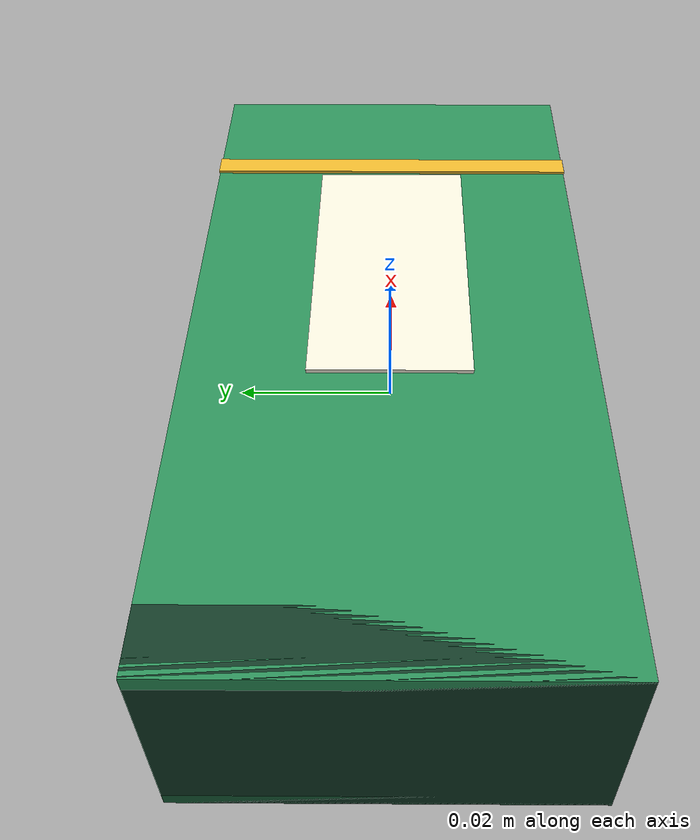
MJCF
<mujoco model="vla82_vla82_048">
  <compiler angle="radian"/>
  <asset>
    <texture name="source_texture" type="2d" file="source_texture.png"/>
    <material name="source_material" texture="source_texture" rgba="1 1 1 1"/>
  </asset>
  <default>
    <default class="visual"><geom contype="0" conaffinity="0" group="1"/></default>
    <default class="collision"><geom contype="1" conaffinity="1" group="0" density="300" friction="0.65 0.006 0.0002" solref="0.02 1" solimp="0.9 0.95 0.001"/></default>
    <default class="region"><geom contype="0" conaffinity="0" group="1" rgba="0 1 0 0" mass="0"/></default>
  </default>
  <worldbody><body><body name="object">
    <geom name="notebook_pages" class="visual" type="box" pos="0.003 0 0" size="0.044000 0.022000 0.012000" rgba="0.94 0.90 0.80 1"/>
    <geom name="notebook_cover_top" class="visual" type="box" pos="0 0 0.013000" size="0.050000 0.025000 0.001" rgba="0.18 0.58 0.36 1"/>
    <geom name="notebook_cover_bottom" class="visual" type="box" pos="0 0 -0.013000" size="0.050000 0.025000 0.001" rgba="0.10 0.38 0.23 1"/>
    <geom name="notebook_spine" class="visual" type="box" pos="-0.046000 0 0" size="0.004 0.025000 0.014000" rgba="0.08 0.24 0.16 1"/>
    <geom name="notebook_label" class="visual" type="box" pos="0.010 0 0.014250" size="0.020 0.010 0.00025" rgba="0.97 0.96 0.88 1"/>
    <geom name="notebook_elastic" class="visual" type="box" pos="0.032 0 0.014550" size="0.0015 0.025000 0.00020" rgba="0.94 0.73 0.18 1"/>
    <geom name="collision" class="collision" type="box" size="0.050000 0.025000 0.014000"/>
    <geom name="reg_bbox" class="region" type="box" pos="0 0 0" size="0.050000 0.025000 0.014000"/>
  </body></body></worldbody>
  <actuator/>
</mujoco>
